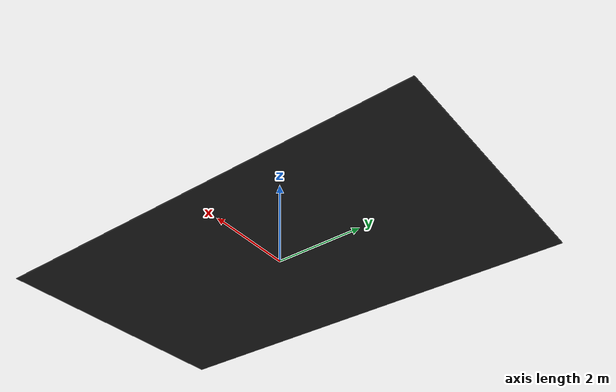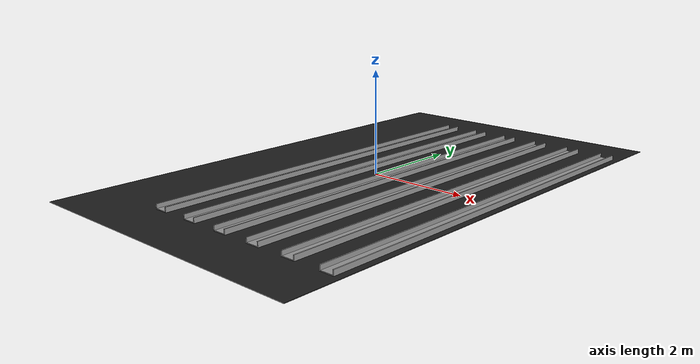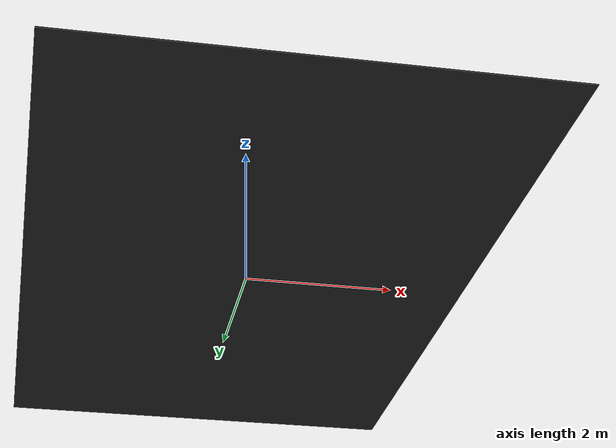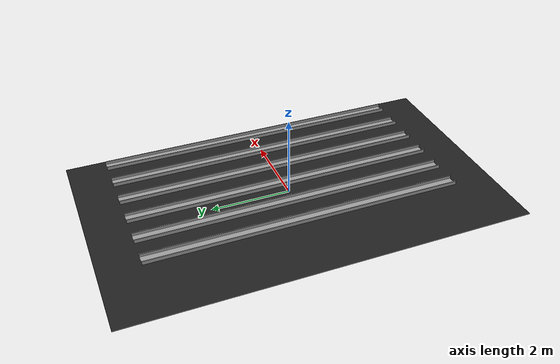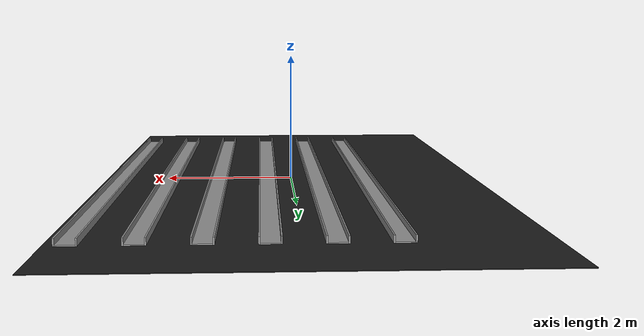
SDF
<?xml version='1.0'?>
<sdf version='1.6'>
  <model name='BaseBricks'>
    <link name='link_0'>
      <pose frame=''>0 0 0 0 -0 0</pose>
      <inertial>
        <mass>1</mass>
        <inertia>
          <ixx>0.166667</ixx>
          <ixy>0</ixy>
          <ixz>0</ixz>
          <iyy>0.166667</iyy>
          <iyz>0</iyz>
          <izz>0.166667</izz>
        </inertia>
        <pose frame=''>0 0 0 0 -0 0</pose>
      </inertial>
      <gravity>1</gravity>
      <self_collide>0</self_collide>
      <kinematic>0</kinematic>
      <visual name='visual'>
        <pose frame=''>0 0 0 0 -0 0</pose>
        <geometry>
          <box>
            <size>6 10 0.01</size>
          </box>
        </geometry>
        <material>
          <lighting>1</lighting>
          <script>
            <uri>file://media/materials/scripts/gazebo.material</uri>
            <name>Gazebo/Black</name>
          </script>
          <ambient>0.1 0.1 0.1 1</ambient>
          <diffuse>0.7 0.7 0.7 1</diffuse>
          <specular>0.01 0.01 0.01 1</specular>
          <emissive>0 0 0 1</emissive>
          <shader type='vertex'>
            <normal_map>__default__</normal_map>
          </shader>
        </material>
        <cast_shadows>1</cast_shadows>
        <transparency>0</transparency>
      </visual>
      <visual name='ModelPreview_0::link_0::visual_1'>
        <pose frame=''>-0.39 0 0.01 0 -0 0</pose>
        <geometry>
          <box>
            <size>0.24 8 0.02</size>
          </box>
        </geometry>
        <material>
          <lighting>1</lighting>
          <script>
            <uri>file://media/materials/scripts/gazebo.material</uri>
            <name>Gazebo/Grey</name>
          </script>
          <ambient>0.8 0.8 0.8 1</ambient>
          <diffuse>0.7 0.7 0.7 1</diffuse>
          <specular>0.01 0.01 0.01 1</specular>
          <emissive>0 0 0 1</emissive>
          <shader type='vertex'>
            <normal_map>__default__</normal_map>
          </shader>
        </material>
        <cast_shadows>1</cast_shadows>
        <transparency>0</transparency>
      </visual>
      <visual name='ModelPreview_0::link_0::visual_2'>
        <pose frame=''>-0.52 0 0.05 0 -0 0</pose>
        <geometry>
          <box>
            <size>0.02 8 0.1</size>
          </box>
        </geometry>
        <material>
          <lighting>1</lighting>
          <script>
            <uri>file://media/materials/scripts/gazebo.material</uri>
            <name>Gazebo/Grey</name>
          </script>
          <ambient>0.8 0.8 0.8 1</ambient>
          <diffuse>0.7 0.7 0.7 1</diffuse>
          <specular>0.01 0.01 0.01 1</specular>
          <emissive>0 0 0 1</emissive>
          <shader type='vertex'>
            <normal_map>__default__</normal_map>
          </shader>
        </material>
        <cast_shadows>1</cast_shadows>
        <transparency>0</transparency>
      </visual>
      <visual name='ModelPreview_0::link_0::visual_3'>
        <pose frame=''>-0.26 0 0.05 0 -0 0</pose>
        <geometry>
          <box>
            <size>0.02 8 0.1</size>
          </box>
        </geometry>
        <material>
          <lighting>1</lighting>
          <script>
            <uri>file://media/materials/scripts/gazebo.material</uri>
            <name>Gazebo/Grey</name>
          </script>
          <ambient>0.8 0.8 0.8 1</ambient>
          <diffuse>0.7 0.7 0.7 1</diffuse>
          <specular>0.01 0.01 0.01 1</specular>
          <emissive>0 0 0 1</emissive>
          <shader type='vertex'>
            <normal_map>__default__</normal_map>
          </shader>
        </material>
        <cast_shadows>1</cast_shadows>
        <transparency>0</transparency>
      </visual>
      <collision name='collision_1'>
        <laser_retro>0</laser_retro>
        <max_contacts>10</max_contacts>
        <pose frame=''>-0.39 0 0 0 -0 0</pose>
        <geometry>
          <box>
            <size>0.24 8 0.02</size>
          </box>
        </geometry>
        <surface>
          <friction>
            <ode>
              <mu>1</mu>
              <mu2>1</mu2>
              <fdir1>0 0 0</fdir1>
              <slip1>0</slip1>
              <slip2>0</slip2>
            </ode>
            <torsional>
              <coefficient>1</coefficient>
              <patch_radius>0</patch_radius>
              <surface_radius>0</surface_radius>
              <use_patch_radius>1</use_patch_radius>
              <ode>
                <slip>0</slip>
              </ode>
            </torsional>
          </friction>
          <bounce>
            <restitution_coefficient>0</restitution_coefficient>
            <threshold>1e+06</threshold>
          </bounce>
          <contact>
            <collide_without_contact>0</collide_without_contact>
            <collide_without_contact_bitmask>1</collide_without_contact_bitmask>
            <collide_bitmask>1</collide_bitmask>
            <ode>
              <soft_cfm>0</soft_cfm>
              <soft_erp>0.2</soft_erp>
              <kp>1e+13</kp>
              <kd>1</kd>
              <max_vel>0.01</max_vel>
              <min_depth>0</min_depth>
            </ode>
            <bullet>
              <split_impulse>1</split_impulse>
              <split_impulse_penetration_threshold>-0.01</split_impulse_penetration_threshold>
              <soft_cfm>0</soft_cfm>
              <soft_erp>0.2</soft_erp>
              <kp>1e+13</kp>
              <kd>1</kd>
            </bullet>
          </contact>
        </surface>
      </collision>
      <collision name='collision_2'>
        <laser_retro>0</laser_retro>
        <max_contacts>10</max_contacts>
        <pose frame=''>-0.52 0 0.05 0 -0 0</pose>
        <geometry>
          <box>
            <size>0.02 8 0.1</size>
          </box>
        </geometry>
        <surface>
          <friction>
            <ode>
              <mu>1</mu>
              <mu2>1</mu2>
              <fdir1>0 0 0</fdir1>
              <slip1>0</slip1>
              <slip2>0</slip2>
            </ode>
            <torsional>
              <coefficient>1</coefficient>
              <patch_radius>0</patch_radius>
              <surface_radius>0</surface_radius>
              <use_patch_radius>1</use_patch_radius>
              <ode>
                <slip>0</slip>
              </ode>
            </torsional>
          </friction>
          <bounce>
            <restitution_coefficient>0</restitution_coefficient>
            <threshold>1e+06</threshold>
          </bounce>
          <contact>
            <collide_without_contact>0</collide_without_contact>
            <collide_without_contact_bitmask>1</collide_without_contact_bitmask>
            <collide_bitmask>1</collide_bitmask>
            <ode>
              <soft_cfm>0</soft_cfm>
              <soft_erp>0.2</soft_erp>
              <kp>1e+13</kp>
              <kd>1</kd>
              <max_vel>0.01</max_vel>
              <min_depth>0</min_depth>
            </ode>
            <bullet>
              <split_impulse>1</split_impulse>
              <split_impulse_penetration_threshold>-0.01</split_impulse_penetration_threshold>
              <soft_cfm>0</soft_cfm>
              <soft_erp>0.2</soft_erp>
              <kp>1e+13</kp>
              <kd>1</kd>
            </bullet>
          </contact>
        </surface>
      </collision>
      <collision name='collision_3'>
        <laser_retro>0</laser_retro>
        <max_contacts>10</max_contacts>
        <pose frame=''>-0.26 0 0.05 0 -0 0</pose>
        <geometry>
          <box>
            <size>0.02 8 0.1</size>
          </box>
        </geometry>
        <surface>
          <friction>
            <ode>
              <mu>1</mu>
              <mu2>1</mu2>
              <fdir1>0 0 0</fdir1>
              <slip1>0</slip1>
              <slip2>0</slip2>
            </ode>
            <torsional>
              <coefficient>1</coefficient>
              <patch_radius>0</patch_radius>
              <surface_radius>0</surface_radius>
              <use_patch_radius>1</use_patch_radius>
              <ode>
                <slip>0</slip>
              </ode>
            </torsional>
          </friction>
          <bounce>
            <restitution_coefficient>0</restitution_coefficient>
            <threshold>1e+06</threshold>
          </bounce>
          <contact>
            <collide_without_contact>0</collide_without_contact>
            <collide_without_contact_bitmask>1</collide_without_contact_bitmask>
            <collide_bitmask>1</collide_bitmask>
            <ode>
              <soft_cfm>0</soft_cfm>
              <soft_erp>0.2</soft_erp>
              <kp>1e+13</kp>
              <kd>1</kd>
              <max_vel>0.01</max_vel>
              <min_depth>0</min_depth>
            </ode>
            <bullet>
              <split_impulse>1</split_impulse>
              <split_impulse_penetration_threshold>-0.01</split_impulse_penetration_threshold>
              <soft_cfm>0</soft_cfm>
              <soft_erp>0.2</soft_erp>
              <kp>1e+13</kp>
              <kd>1</kd>
            </bullet>
          </contact>
        </surface>
      </collision>
<!-- RAIL 2 -->
      <visual name='ModelPreview_0::link_0::visual_4'>
        <pose frame=''>0.39 0 0.01 0 -0 0</pose>
        <geometry>
          <box>
            <size>0.24 8 0.02</size>
          </box>
        </geometry>
        <material>
          <lighting>1</lighting>
          <script>
            <uri>file://media/materials/scripts/gazebo.material</uri>
            <name>Gazebo/Grey</name>
          </script>
          <ambient>0.8 0.8 0.8 1</ambient>
          <diffuse>0.7 0.7 0.7 1</diffuse>
          <specular>0.01 0.01 0.01 1</specular>
          <emissive>0 0 0 1</emissive>
          <shader type='vertex'>
            <normal_map>__default__</normal_map>
          </shader>
        </material>
        <cast_shadows>1</cast_shadows>
        <transparency>0</transparency>
      </visual>
      <visual name='ModelPreview_0::link_0::visual_5'>
        <pose frame=''>0.52 0 0.05 0 -0 0</pose>
        <geometry>
          <box>
            <size>0.02 8 0.1</size>
          </box>
        </geometry>
        <material>
          <lighting>1</lighting>
          <script>
            <uri>file://media/materials/scripts/gazebo.material</uri>
            <name>Gazebo/Grey</name>
          </script>
          <ambient>0.8 0.8 0.8 1</ambient>
          <diffuse>0.7 0.7 0.7 1</diffuse>
          <specular>0.01 0.01 0.01 1</specular>
          <emissive>0 0 0 1</emissive>
          <shader type='vertex'>
            <normal_map>__default__</normal_map>
          </shader>
        </material>
        <cast_shadows>1</cast_shadows>
        <transparency>0</transparency>
      </visual>
      <visual name='ModelPreview_0::link_0::visual_6'>
        <pose frame=''>0.26 0 0.05 0 -0 0</pose>
        <geometry>
          <box>
            <size>0.02 8 0.1</size>
          </box>
        </geometry>
        <material>
          <lighting>1</lighting>
          <script>
            <uri>file://media/materials/scripts/gazebo.material</uri>
            <name>Gazebo/Grey</name>
          </script>
          <ambient>0.8 0.8 0.8 1</ambient>
          <diffuse>0.7 0.7 0.7 1</diffuse>
          <specular>0.01 0.01 0.01 1</specular>
          <emissive>0 0 0 1</emissive>
          <shader type='vertex'>
            <normal_map>__default__</normal_map>
          </shader>
        </material>
        <cast_shadows>1</cast_shadows>
        <transparency>0</transparency>
      </visual>
      <collision name='collision_4'>
        <laser_retro>0</laser_retro>
        <max_contacts>10</max_contacts>
        <pose frame=''>0.39 0 0 0 -0 0</pose>
        <geometry>
          <box>
            <size>0.24 8 0.02</size>
          </box>
        </geometry>
        <surface>
          <friction>
            <ode>
              <mu>1</mu>
              <mu2>1</mu2>
              <fdir1>0 0 0</fdir1>
              <slip1>0</slip1>
              <slip2>0</slip2>
            </ode>
            <torsional>
              <coefficient>1</coefficient>
              <patch_radius>0</patch_radius>
              <surface_radius>0</surface_radius>
              <use_patch_radius>1</use_patch_radius>
              <ode>
                <slip>0</slip>
              </ode>
            </torsional>
          </friction>
          <bounce>
            <restitution_coefficient>0</restitution_coefficient>
            <threshold>1e+06</threshold>
          </bounce>
          <contact>
            <collide_without_contact>0</collide_without_contact>
            <collide_without_contact_bitmask>1</collide_without_contact_bitmask>
            <collide_bitmask>1</collide_bitmask>
            <ode>
              <soft_cfm>0</soft_cfm>
              <soft_erp>0.2</soft_erp>
              <kp>1e+13</kp>
              <kd>1</kd>
              <max_vel>0.01</max_vel>
              <min_depth>0</min_depth>
            </ode>
            <bullet>
              <split_impulse>1</split_impulse>
              <split_impulse_penetration_threshold>-0.01</split_impulse_penetration_threshold>
              <soft_cfm>0</soft_cfm>
              <soft_erp>0.2</soft_erp>
              <kp>1e+13</kp>
              <kd>1</kd>
            </bullet>
          </contact>
        </surface>
      </collision>
      <collision name='collision_5'>
        <laser_retro>0</laser_retro>
        <max_contacts>10</max_contacts>
        <pose frame=''>0.52 0 0.05 0 -0 0</pose>
        <geometry>
          <box>
            <size>0.02 8 0.1</size>
          </box>
        </geometry>
        <surface>
          <friction>
            <ode>
              <mu>1</mu>
              <mu2>1</mu2>
              <fdir1>0 0 0</fdir1>
              <slip1>0</slip1>
              <slip2>0</slip2>
            </ode>
            <torsional>
              <coefficient>1</coefficient>
              <patch_radius>0</patch_radius>
              <surface_radius>0</surface_radius>
              <use_patch_radius>1</use_patch_radius>
              <ode>
                <slip>0</slip>
              </ode>
            </torsional>
          </friction>
          <bounce>
            <restitution_coefficient>0</restitution_coefficient>
            <threshold>1e+06</threshold>
          </bounce>
          <contact>
            <collide_without_contact>0</collide_without_contact>
            <collide_without_contact_bitmask>1</collide_without_contact_bitmask>
            <collide_bitmask>1</collide_bitmask>
            <ode>
              <soft_cfm>0</soft_cfm>
              <soft_erp>0.2</soft_erp>
              <kp>1e+13</kp>
              <kd>1</kd>
              <max_vel>0.01</max_vel>
              <min_depth>0</min_depth>
            </ode>
            <bullet>
              <split_impulse>1</split_impulse>
              <split_impulse_penetration_threshold>-0.01</split_impulse_penetration_threshold>
              <soft_cfm>0</soft_cfm>
              <soft_erp>0.2</soft_erp>
              <kp>1e+13</kp>
              <kd>1</kd>
            </bullet>
          </contact>
        </surface>
      </collision>
      <collision name='collision_6'>
        <laser_retro>0</laser_retro>
        <max_contacts>10</max_contacts>
        <pose frame=''>0.26 0 0.05 0 -0 0</pose>
        <geometry>
          <box>
            <size>0.02 8 0.1</size>
          </box>
        </geometry>
        <surface>
          <friction>
            <ode>
              <mu>1</mu>
              <mu2>1</mu2>
              <fdir1>0 0 0</fdir1>
              <slip1>0</slip1>
              <slip2>0</slip2>
            </ode>
            <torsional>
              <coefficient>1</coefficient>
              <patch_radius>0</patch_radius>
              <surface_radius>0</surface_radius>
              <use_patch_radius>1</use_patch_radius>
              <ode>
                <slip>0</slip>
              </ode>
            </torsional>
          </friction>
          <bounce>
            <restitution_coefficient>0</restitution_coefficient>
            <threshold>1e+06</threshold>
          </bounce>
          <contact>
            <collide_without_contact>0</collide_without_contact>
            <collide_without_contact_bitmask>1</collide_without_contact_bitmask>
            <collide_bitmask>1</collide_bitmask>
            <ode>
              <soft_cfm>0</soft_cfm>
              <soft_erp>0.2</soft_erp>
              <kp>1e+13</kp>
              <kd>1</kd>
              <max_vel>0.01</max_vel>
              <min_depth>0</min_depth>
            </ode>
            <bullet>
              <split_impulse>1</split_impulse>
              <split_impulse_penetration_threshold>-0.01</split_impulse_penetration_threshold>
              <soft_cfm>0</soft_cfm>
              <soft_erp>0.2</soft_erp>
              <kp>1e+13</kp>
              <kd>1</kd>
            </bullet>
          </contact>
        </surface>
      </collision>

      <!-- RAIL 3 -->
      <visual name='ModelPreview_0::link_0::visual_7'>
        <pose frame=''>1.17 0 0.01 0 -0 0</pose>
        <geometry>
          <box>
            <size>0.24 8 0.02</size>
          </box>
        </geometry>
        <material>
          <lighting>1</lighting>
          <script>
            <uri>file://media/materials/scripts/gazebo.material</uri>
            <name>Gazebo/Grey</name>
          </script>
          <ambient>0.8 0.8 0.8 1</ambient>
          <diffuse>0.7 0.7 0.7 1</diffuse>
          <specular>0.01 0.01 0.01 1</specular>
          <emissive>0 0 0 1</emissive>
          <shader type='vertex'>
            <normal_map>__default__</normal_map>
          </shader>
        </material>
        <cast_shadows>1</cast_shadows>
        <transparency>0</transparency>
      </visual>
      <visual name='ModelPreview_0::link_0::visual_8'>
        <pose frame=''>1.3 0 0.05 0 -0 0</pose>
        <geometry>
          <box>
            <size>0.02 8 0.1</size>
          </box>
        </geometry>
        <material>
          <lighting>1</lighting>
          <script>
            <uri>file://media/materials/scripts/gazebo.material</uri>
            <name>Gazebo/Grey</name>
          </script>
          <ambient>0.8 0.8 0.8 1</ambient>
          <diffuse>0.7 0.7 0.7 1</diffuse>
          <specular>0.01 0.01 0.01 1</specular>
          <emissive>0 0 0 1</emissive>
          <shader type='vertex'>
            <normal_map>__default__</normal_map>
          </shader>
        </material>
        <cast_shadows>1</cast_shadows>
        <transparency>0</transparency>
      </visual>
      <visual name='ModelPreview_0::link_0::visual_9'>
        <pose frame=''>1.04 0 0.05 0 -0 0</pose>
        <geometry>
          <box>
            <size>0.02 8 0.1</size>
          </box>
        </geometry>
        <material>
          <lighting>1</lighting>
          <script>
            <uri>file://media/materials/scripts/gazebo.material</uri>
            <name>Gazebo/Grey</name>
          </script>
          <ambient>0.8 0.8 0.8 1</ambient>
          <diffuse>0.7 0.7 0.7 1</diffuse>
          <specular>0.01 0.01 0.01 1</specular>
          <emissive>0 0 0 1</emissive>
          <shader type='vertex'>
            <normal_map>__default__</normal_map>
          </shader>
        </material>
        <cast_shadows>1</cast_shadows>
        <transparency>0</transparency>
      </visual>
      <collision name='collision_7'>
        <laser_retro>0</laser_retro>
        <max_contacts>10</max_contacts>
        <pose frame=''>1.17 0 0 0 -0 0</pose>
        <geometry>
          <box>
            <size>0.24 8 0.02</size>
          </box>
        </geometry>
        <surface>
          <friction>
            <ode>
              <mu>1</mu>
              <mu2>1</mu2>
              <fdir1>0 0 0</fdir1>
              <slip1>0</slip1>
              <slip2>0</slip2>
            </ode>
            <torsional>
              <coefficient>1</coefficient>
              <patch_radius>0</patch_radius>
              <surface_radius>0</surface_radius>
              <use_patch_radius>1</use_patch_radius>
              <ode>
                <slip>0</slip>
              </ode>
            </torsional>
          </friction>
          <bounce>
            <restitution_coefficient>0</restitution_coefficient>
            <threshold>1e+06</threshold>
          </bounce>
          <contact>
            <collide_without_contact>0</collide_without_contact>
            <collide_without_contact_bitmask>1</collide_without_contact_bitmask>
            <collide_bitmask>1</collide_bitmask>
            <ode>
              <soft_cfm>0</soft_cfm>
              <soft_erp>0.2</soft_erp>
              <kp>1e+13</kp>
              <kd>1</kd>
              <max_vel>0.01</max_vel>
              <min_depth>0</min_depth>
            </ode>
            <bullet>
              <split_impulse>1</split_impulse>
              <split_impulse_penetration_threshold>-0.01</split_impulse_penetration_threshold>
              <soft_cfm>0</soft_cfm>
              <soft_erp>0.2</soft_erp>
              <kp>1e+13</kp>
              <kd>1</kd>
            </bullet>
          </contact>
        </surface>
      </collision>
      <collision name='collision_8'>
        <laser_retro>0</laser_retro>
        <max_contacts>10</max_contacts>
        <pose frame=''>1.3 0 0.05 0 -0 0</pose>
        <geometry>
          <box>
            <size>0.02 8 0.1</size>
          </box>
        </geometry>
        <surface>
          <friction>
            <ode>
              <mu>1</mu>
              <mu2>1</mu2>
              <fdir1>0 0 0</fdir1>
              <slip1>0</slip1>
              <slip2>0</slip2>
            </ode>
            <torsional>
              <coefficient>1</coefficient>
              <patch_radius>0</patch_radius>
              <surface_radius>0</surface_radius>
              <use_patch_radius>1</use_patch_radius>
              <ode>
                <slip>0</slip>
              </ode>
            </torsional>
          </friction>
          <bounce>
            <restitution_coefficient>0</restitution_coefficient>
            <threshold>1e+06</threshold>
          </bounce>
          <contact>
            <collide_without_contact>0</collide_without_contact>
            <collide_without_contact_bitmask>1</collide_without_contact_bitmask>
            <collide_bitmask>1</collide_bitmask>
            <ode>
              <soft_cfm>0</soft_cfm>
              <soft_erp>0.2</soft_erp>
              <kp>1e+13</kp>
              <kd>1</kd>
              <max_vel>0.01</max_vel>
              <min_depth>0</min_depth>
            </ode>
            <bullet>
              <split_impulse>1</split_impulse>
              <split_impulse_penetration_threshold>-0.01</split_impulse_penetration_threshold>
              <soft_cfm>0</soft_cfm>
              <soft_erp>0.2</soft_erp>
              <kp>1e+13</kp>
              <kd>1</kd>
            </bullet>
          </contact>
        </surface>
      </collision>
      <collision name='collision_9'>
        <laser_retro>0</laser_retro>
        <max_contacts>10</max_contacts>
        <pose frame=''>1.04 0 0.05 0 -0 0</pose>
        <geometry>
          <box>
            <size>0.02 8 0.1</size>
          </box>
        </geometry>
        <surface>
          <friction>
            <ode>
              <mu>1</mu>
              <mu2>1</mu2>
              <fdir1>0 0 0</fdir1>
              <slip1>0</slip1>
              <slip2>0</slip2>
            </ode>
            <torsional>
              <coefficient>1</coefficient>
              <patch_radius>0</patch_radius>
              <surface_radius>0</surface_radius>
              <use_patch_radius>1</use_patch_radius>
              <ode>
                <slip>0</slip>
              </ode>
            </torsional>
          </friction>
          <bounce>
            <restitution_coefficient>0</restitution_coefficient>
            <threshold>1e+06</threshold>
          </bounce>
          <contact>
            <collide_without_contact>0</collide_without_contact>
            <collide_without_contact_bitmask>1</collide_without_contact_bitmask>
            <collide_bitmask>1</collide_bitmask>
            <ode>
              <soft_cfm>0</soft_cfm>
              <soft_erp>0.2</soft_erp>
              <kp>1e+13</kp>
              <kd>1</kd>
              <max_vel>0.01</max_vel>
              <min_depth>0</min_depth>
            </ode>
            <bullet>
              <split_impulse>1</split_impulse>
              <split_impulse_penetration_threshold>-0.01</split_impulse_penetration_threshold>
              <soft_cfm>0</soft_cfm>
              <soft_erp>0.2</soft_erp>
              <kp>1e+13</kp>
              <kd>1</kd>
            </bullet>
          </contact>
        </surface>
      </collision>

      <!-- RAIL 4 -->
      <visual name='ModelPreview_0::link_0::visual_10'>
        <pose frame=''>-1.17 0 0.01 0 -0 0</pose>
        <geometry>
          <box>
            <size>0.24 8 0.02</size>
          </box>
        </geometry>
        <material>
          <lighting>1</lighting>
          <script>
            <uri>file://media/materials/scripts/gazebo.material</uri>
            <name>Gazebo/Grey</name>
          </script>
          <ambient>0.8 0.8 0.8 1</ambient>
          <diffuse>0.7 0.7 0.7 1</diffuse>
          <specular>0.01 0.01 0.01 1</specular>
          <emissive>0 0 0 1</emissive>
          <shader type='vertex'>
            <normal_map>__default__</normal_map>
          </shader>
        </material>
        <cast_shadows>1</cast_shadows>
        <transparency>0</transparency>
      </visual>
      <visual name='ModelPreview_0::link_0::visual_11'>
        <pose frame=''>-1.3 0 0.05 0 -0 0</pose>
        <geometry>
          <box>
            <size>0.02 8 0.1</size>
          </box>
        </geometry>
        <material>
          <lighting>1</lighting>
          <script>
            <uri>file://media/materials/scripts/gazebo.material</uri>
            <name>Gazebo/Grey</name>
          </script>
          <ambient>0.8 0.8 0.8 1</ambient>
          <diffuse>0.7 0.7 0.7 1</diffuse>
          <specular>0.01 0.01 0.01 1</specular>
          <emissive>0 0 0 1</emissive>
          <shader type='vertex'>
            <normal_map>__default__</normal_map>
          </shader>
        </material>
        <cast_shadows>1</cast_shadows>
        <transparency>0</transparency>
      </visual>
      <visual name='ModelPreview_0::link_0::visual_12'>
        <pose frame=''>-1.04 0 0.05 0 -0 0</pose>
        <geometry>
          <box>
            <size>0.02 8 0.1</size>
          </box>
        </geometry>
        <material>
          <lighting>1</lighting>
          <script>
            <uri>file://media/materials/scripts/gazebo.material</uri>
            <name>Gazebo/Grey</name>
          </script>
          <ambient>0.8 0.8 0.8 1</ambient>
          <diffuse>0.7 0.7 0.7 1</diffuse>
          <specular>0.01 0.01 0.01 1</specular>
          <emissive>0 0 0 1</emissive>
          <shader type='vertex'>
            <normal_map>__default__</normal_map>
          </shader>
        </material>
        <cast_shadows>1</cast_shadows>
        <transparency>0</transparency>
      </visual>
      <collision name='collision_10'>
        <laser_retro>0</laser_retro>
        <max_contacts>10</max_contacts>
        <pose frame=''>-1.17 0 0 0 -0 0</pose>
        <geometry>
          <box>
            <size>0.24 8 0.02</size>
          </box>
        </geometry>
        <surface>
          <friction>
            <ode>
              <mu>1</mu>
              <mu2>1</mu2>
              <fdir1>0 0 0</fdir1>
              <slip1>0</slip1>
              <slip2>0</slip2>
            </ode>
            <torsional>
              <coefficient>1</coefficient>
              <patch_radius>0</patch_radius>
              <surface_radius>0</surface_radius>
              <use_patch_radius>1</use_patch_radius>
              <ode>
                <slip>0</slip>
              </ode>
            </torsional>
          </friction>
          <bounce>
            <restitution_coefficient>0</restitution_coefficient>
            <threshold>1e+06</threshold>
          </bounce>
          <contact>
            <collide_without_contact>0</collide_without_contact>
            <collide_without_contact_bitmask>1</collide_without_contact_bitmask>
            <collide_bitmask>1</collide_bitmask>
            <ode>
              <soft_cfm>0</soft_cfm>
              <soft_erp>0.2</soft_erp>
              <kp>1e+13</kp>
              <kd>1</kd>
              <max_vel>0.01</max_vel>
              <min_depth>0</min_depth>
            </ode>
            <bullet>
              <split_impulse>1</split_impulse>
              <split_impulse_penetration_threshold>-0.01</split_impulse_penetration_threshold>
              <soft_cfm>0</soft_cfm>
              <soft_erp>0.2</soft_erp>
              <kp>1e+13</kp>
              <kd>1</kd>
            </bullet>
          </contact>
        </surface>
      </collision>
      <collision name='collision_11'>
        <laser_retro>0</laser_retro>
        <max_contacts>10</max_contacts>
        <pose frame=''>-1.3 0 0.05 0 -0 0</pose>
        <geometry>
          <box>
            <size>0.02 8 0.1</size>
          </box>
        </geometry>
        <surface>
          <friction>
            <ode>
              <mu>1</mu>
              <mu2>1</mu2>
              <fdir1>0 0 0</fdir1>
              <slip1>0</slip1>
              <slip2>0</slip2>
            </ode>
            <torsional>
              <coefficient>1</coefficient>
              <patch_radius>0</patch_radius>
              <surface_radius>0</surface_radius>
              <use_patch_radius>1</use_patch_radius>
              <ode>
                <slip>0</slip>
              </ode>
            </torsional>
          </friction>
          <bounce>
            <restitution_coefficient>0</restitution_coefficient>
            <threshold>1e+06</threshold>
          </bounce>
          <contact>
            <collide_without_contact>0</collide_without_contact>
            <collide_without_contact_bitmask>1</collide_without_contact_bitmask>
            <collide_bitmask>1</collide_bitmask>
            <ode>
              <soft_cfm>0</soft_cfm>
              <soft_erp>0.2</soft_erp>
              <kp>1e+13</kp>
              <kd>1</kd>
              <max_vel>0.01</max_vel>
              <min_depth>0</min_depth>
            </ode>
            <bullet>
              <split_impulse>1</split_impulse>
              <split_impulse_penetration_threshold>-0.01</split_impulse_penetration_threshold>
              <soft_cfm>0</soft_cfm>
              <soft_erp>0.2</soft_erp>
              <kp>1e+13</kp>
              <kd>1</kd>
            </bullet>
          </contact>
        </surface>
      </collision>
      <collision name='collision_12'>
        <laser_retro>0</laser_retro>
        <max_contacts>10</max_contacts>
        <pose frame=''>-1.04 0 0.05 0 -0 0</pose>
        <geometry>
          <box>
            <size>0.02 8 0.1</size>
          </box>
        </geometry>
        <surface>
          <friction>
            <ode>
              <mu>1</mu>
              <mu2>1</mu2>
              <fdir1>0 0 0</fdir1>
              <slip1>0</slip1>
              <slip2>0</slip2>
            </ode>
            <torsional>
              <coefficient>1</coefficient>
              <patch_radius>0</patch_radius>
              <surface_radius>0</surface_radius>
              <use_patch_radius>1</use_patch_radius>
              <ode>
                <slip>0</slip>
              </ode>
            </torsional>
          </friction>
          <bounce>
            <restitution_coefficient>0</restitution_coefficient>
            <threshold>1e+06</threshold>
          </bounce>
          <contact>
            <collide_without_contact>0</collide_without_contact>
            <collide_without_contact_bitmask>1</collide_without_contact_bitmask>
            <collide_bitmask>1</collide_bitmask>
            <ode>
              <soft_cfm>0</soft_cfm>
              <soft_erp>0.2</soft_erp>
              <kp>1e+13</kp>
              <kd>1</kd>
              <max_vel>0.01</max_vel>
              <min_depth>0</min_depth>
            </ode>
            <bullet>
              <split_impulse>1</split_impulse>
              <split_impulse_penetration_threshold>-0.01</split_impulse_penetration_threshold>
              <soft_cfm>0</soft_cfm>
              <soft_erp>0.2</soft_erp>
              <kp>1e+13</kp>
              <kd>1</kd>
            </bullet>
          </contact>
        </surface>
      </collision>

      <!-- RAIL 5 -->
      <visual name='ModelPreview_0::link_0::visual_51'>
        <pose frame=''>1.95 0 0.01 0 -0 0</pose>
        <geometry>
          <box>
            <size>0.24 8 0.02</size>
          </box>
        </geometry>
        <material>
          <lighting>1</lighting>
          <script>
            <uri>file://media/materials/scripts/gazebo.material</uri>
            <name>Gazebo/Grey</name>
          </script>
          <ambient>0.8 0.8 0.8 1</ambient>
          <diffuse>0.7 0.7 0.7 1</diffuse>
          <specular>0.01 0.01 0.01 1</specular>
          <emissive>0 0 0 1</emissive>
          <shader type='vertex'>
            <normal_map>__default__</normal_map>
          </shader>
        </material>
        <cast_shadows>1</cast_shadows>
        <transparency>0</transparency>
      </visual>
      <visual name='ModelPreview_0::link_0::visual_52'>
        <pose frame=''>2.08 0 0.05 0 -0 0</pose>
        <geometry>
          <box>
            <size>0.02 8 0.1</size>
          </box>
        </geometry>
        <material>
          <lighting>1</lighting>
          <script>
            <uri>file://media/materials/scripts/gazebo.material</uri>
            <name>Gazebo/Grey</name>
          </script>
          <ambient>0.8 0.8 0.8 1</ambient>
          <diffuse>0.7 0.7 0.7 1</diffuse>
          <specular>0.01 0.01 0.01 1</specular>
          <emissive>0 0 0 1</emissive>
          <shader type='vertex'>
            <normal_map>__default__</normal_map>
          </shader>
        </material>
        <cast_shadows>1</cast_shadows>
        <transparency>0</transparency>
      </visual>
      <visual name='ModelPreview_0::link_0::visual_53'>
        <pose frame=''>1.82 0 0.05 0 -0 0</pose>
        <geometry>
          <box>
            <size>0.02 8 0.1</size>
          </box>
        </geometry>
        <material>
          <lighting>1</lighting>
          <script>
            <uri>file://media/materials/scripts/gazebo.material</uri>
            <name>Gazebo/Grey</name>
          </script>
          <ambient>0.8 0.8 0.8 1</ambient>
          <diffuse>0.7 0.7 0.7 1</diffuse>
          <specular>0.01 0.01 0.01 1</specular>
          <emissive>0 0 0 1</emissive>
          <shader type='vertex'>
            <normal_map>__default__</normal_map>
          </shader>
        </material>
        <cast_shadows>1</cast_shadows>
        <transparency>0</transparency>
      </visual>
      <collision name='collision_51'>
        <laser_retro>0</laser_retro>
        <max_contacts>10</max_contacts>
        <pose frame=''>1.95 0 0 0 -0 0</pose>
        <geometry>
          <box>
            <size>0.24 8 0.02</size>
          </box>
        </geometry>
        <surface>
          <friction>
            <ode>
              <mu>1</mu>
              <mu2>1</mu2>
              <fdir1>0 0 0</fdir1>
              <slip1>0</slip1>
              <slip2>0</slip2>
            </ode>
            <torsional>
              <coefficient>1</coefficient>
              <patch_radius>0</patch_radius>
              <surface_radius>0</surface_radius>
              <use_patch_radius>1</use_patch_radius>
              <ode>
                <slip>0</slip>
              </ode>
            </torsional>
          </friction>
          <bounce>
            <restitution_coefficient>0</restitution_coefficient>
            <threshold>1e+06</threshold>
          </bounce>
          <contact>
            <collide_without_contact>0</collide_without_contact>
            <collide_without_contact_bitmask>1</collide_without_contact_bitmask>
            <collide_bitmask>1</collide_bitmask>
            <ode>
              <soft_cfm>0</soft_cfm>
              <soft_erp>0.2</soft_erp>
              <kp>1e+13</kp>
              <kd>1</kd>
              <max_vel>0.01</max_vel>
              <min_depth>0</min_depth>
            </ode>
            <bullet>
              <split_impulse>1</split_impulse>
              <split_impulse_penetration_threshold>-0.01</split_impulse_penetration_threshold>
              <soft_cfm>0</soft_cfm>
              <soft_erp>0.2</soft_erp>
              <kp>1e+13</kp>
              <kd>1</kd>
            </bullet>
          </contact>
        </surface>
      </collision>
      <collision name='collision_52'>
        <laser_retro>0</laser_retro>
        <max_contacts>10</max_contacts>
        <pose frame=''>2.08 0 0.05 0 -0 0</pose>
        <geometry>
          <box>
            <size>0.02 8 0.1</size>
          </box>
        </geometry>
        <surface>
          <friction>
            <ode>
              <mu>1</mu>
              <mu2>1</mu2>
              <fdir1>0 0 0</fdir1>
              <slip1>0</slip1>
              <slip2>0</slip2>
            </ode>
            <torsional>
              <coefficient>1</coefficient>
              <patch_radius>0</patch_radius>
              <surface_radius>0</surface_radius>
              <use_patch_radius>1</use_patch_radius>
              <ode>
                <slip>0</slip>
              </ode>
            </torsional>
          </friction>
          <bounce>
            <restitution_coefficient>0</restitution_coefficient>
            <threshold>1e+06</threshold>
          </bounce>
          <contact>
            <collide_without_contact>0</collide_without_contact>
            <collide_without_contact_bitmask>1</collide_without_contact_bitmask>
            <collide_bitmask>1</collide_bitmask>
            <ode>
              <soft_cfm>0</soft_cfm>
              <soft_erp>0.2</soft_erp>
              <kp>1e+13</kp>
              <kd>1</kd>
              <max_vel>0.01</max_vel>
              <min_depth>0</min_depth>
            </ode>
            <bullet>
              <split_impulse>1</split_impulse>
              <split_impulse_penetration_threshold>-0.01</split_impulse_penetration_threshold>
              <soft_cfm>0</soft_cfm>
              <soft_erp>0.2</soft_erp>
              <kp>1e+13</kp>
              <kd>1</kd>
            </bullet>
          </contact>
        </surface>
      </collision>
      <collision name='collision_53'>
        <laser_retro>0</laser_retro>
        <max_contacts>10</max_contacts>
        <pose frame=''>1.82 0 0.05 0 -0 0</pose>
        <geometry>
          <box>
            <size>0.02 8 0.1</size>
          </box>
        </geometry>
        <surface>
          <friction>
            <ode>
              <mu>1</mu>
              <mu2>1</mu2>
              <fdir1>0 0 0</fdir1>
              <slip1>0</slip1>
              <slip2>0</slip2>
            </ode>
            <torsional>
              <coefficient>1</coefficient>
              <patch_radius>0</patch_radius>
              <surface_radius>0</surface_radius>
              <use_patch_radius>1</use_patch_radius>
              <ode>
                <slip>0</slip>
              </ode>
            </torsional>
          </friction>
          <bounce>
            <restitution_coefficient>0</restitution_coefficient>
            <threshold>1e+06</threshold>
          </bounce>
          <contact>
            <collide_without_contact>0</collide_without_contact>
            <collide_without_contact_bitmask>1</collide_without_contact_bitmask>
            <collide_bitmask>1</collide_bitmask>
            <ode>
              <soft_cfm>0</soft_cfm>
              <soft_erp>0.2</soft_erp>
              <kp>1e+13</kp>
              <kd>1</kd>
              <max_vel>0.01</max_vel>
              <min_depth>0</min_depth>
            </ode>
            <bullet>
              <split_impulse>1</split_impulse>
              <split_impulse_penetration_threshold>-0.01</split_impulse_penetration_threshold>
              <soft_cfm>0</soft_cfm>
              <soft_erp>0.2</soft_erp>
              <kp>1e+13</kp>
              <kd>1</kd>
            </bullet>
          </contact>
        </surface>
      </collision>
      <!-- RAIL 6 -->
      <visual name='ModelPreview_0::link_0::visual_61'>
        <pose frame=''>2.73 0 0.01 0 -0 0</pose>
        <geometry>
          <box>
            <size>0.24 8 0.02</size>
          </box>
        </geometry>
        <material>
          <lighting>1</lighting>
          <script>
            <uri>file://media/materials/scripts/gazebo.material</uri>
            <name>Gazebo/Grey</name>
          </script>
          <ambient>0.8 0.8 0.8 1</ambient>
          <diffuse>0.7 0.7 0.7 1</diffuse>
          <specular>0.01 0.01 0.01 1</specular>
          <emissive>0 0 0 1</emissive>
          <shader type='vertex'>
            <normal_map>__default__</normal_map>
          </shader>
        </material>
        <cast_shadows>1</cast_shadows>
        <transparency>0</transparency>
      </visual>
      <visual name='ModelPreview_0::link_0::visual_62'>
        <pose frame=''>2.60 0 0.05 0 -0 0</pose>
        <geometry>
          <box>
            <size>0.02 8 0.1</size>
          </box>
        </geometry>
        <material>
          <lighting>1</lighting>
          <script>
            <uri>file://media/materials/scripts/gazebo.material</uri>
            <name>Gazebo/Grey</name>
          </script>
          <ambient>0.8 0.8 0.8 1</ambient>
          <diffuse>0.7 0.7 0.7 1</diffuse>
          <specular>0.01 0.01 0.01 1</specular>
          <emissive>0 0 0 1</emissive>
          <shader type='vertex'>
            <normal_map>__default__</normal_map>
          </shader>
        </material>
        <cast_shadows>1</cast_shadows>
        <transparency>0</transparency>
      </visual>
      <visual name='ModelPreview_0::link_0::visual_63'>
        <pose frame=''>2.86 0 0.05 0 -0 0</pose>
        <geometry>
          <box>
            <size>0.02 8 0.1</size>
          </box>
        </geometry>
        <material>
          <lighting>1</lighting>
          <script>
            <uri>file://media/materials/scripts/gazebo.material</uri>
            <name>Gazebo/Grey</name>
          </script>
          <ambient>0.8 0.8 0.8 1</ambient>
          <diffuse>0.7 0.7 0.7 1</diffuse>
          <specular>0.01 0.01 0.01 1</specular>
          <emissive>0 0 0 1</emissive>
          <shader type='vertex'>
            <normal_map>__default__</normal_map>
          </shader>
        </material>
        <cast_shadows>1</cast_shadows>
        <transparency>0</transparency>
      </visual>
      <collision name='collision_61'>
        <laser_retro>0</laser_retro>
        <max_contacts>10</max_contacts>
        <pose frame=''>2.73 0 0 0 -0 0</pose>
        <geometry>
          <box>
            <size>0.24 8 0.02</size>
          </box>
        </geometry>
        <surface>
          <friction>
            <ode>
              <mu>1</mu>
              <mu2>1</mu2>
              <fdir1>0 0 0</fdir1>
              <slip1>0</slip1>
              <slip2>0</slip2>
            </ode>
            <torsional>
              <coefficient>1</coefficient>
              <patch_radius>0</patch_radius>
              <surface_radius>0</surface_radius>
              <use_patch_radius>1</use_patch_radius>
              <ode>
                <slip>0</slip>
              </ode>
            </torsional>
          </friction>
          <bounce>
            <restitution_coefficient>0</restitution_coefficient>
            <threshold>1e+06</threshold>
          </bounce>
          <contact>
            <collide_without_contact>0</collide_without_contact>
            <collide_without_contact_bitmask>1</collide_without_contact_bitmask>
            <collide_bitmask>1</collide_bitmask>
            <ode>
              <soft_cfm>0</soft_cfm>
              <soft_erp>0.2</soft_erp>
              <kp>1e+13</kp>
              <kd>1</kd>
              <max_vel>0.01</max_vel>
              <min_depth>0</min_depth>
            </ode>
            <bullet>
              <split_impulse>1</split_impulse>
              <split_impulse_penetration_threshold>-0.01</split_impulse_penetration_threshold>
              <soft_cfm>0</soft_cfm>
              <soft_erp>0.2</soft_erp>
              <kp>1e+13</kp>
              <kd>1</kd>
            </bullet>
          </contact>
        </surface>
      </collision>
      <collision name='collision_62'>
        <laser_retro>0</laser_retro>
        <max_contacts>10</max_contacts>
        <pose frame=''>2.60 0 0.05 0 -0 0</pose>
        <geometry>
          <box>
            <size>0.02 8 0.1</size>
          </box>
        </geometry>
        <surface>
          <friction>
            <ode>
              <mu>1</mu>
              <mu2>1</mu2>
              <fdir1>0 0 0</fdir1>
              <slip1>0</slip1>
              <slip2>0</slip2>
            </ode>
            <torsional>
              <coefficient>1</coefficient>
              <patch_radius>0</patch_radius>
              <surface_radius>0</surface_radius>
              <use_patch_radius>1</use_patch_radius>
              <ode>
                <slip>0</slip>
              </ode>
            </torsional>
          </friction>
          <bounce>
            <restitution_coefficient>0</restitution_coefficient>
            <threshold>1e+06</threshold>
          </bounce>
          <contact>
            <collide_without_contact>0</collide_without_contact>
            <collide_without_contact_bitmask>1</collide_without_contact_bitmask>
            <collide_bitmask>1</collide_bitmask>
            <ode>
              <soft_cfm>0</soft_cfm>
              <soft_erp>0.2</soft_erp>
              <kp>1e+13</kp>
              <kd>1</kd>
              <max_vel>0.01</max_vel>
              <min_depth>0</min_depth>
            </ode>
            <bullet>
              <split_impulse>1</split_impulse>
              <split_impulse_penetration_threshold>-0.01</split_impulse_penetration_threshold>
              <soft_cfm>0</soft_cfm>
              <soft_erp>0.2</soft_erp>
              <kp>1e+13</kp>
              <kd>1</kd>
            </bullet>
          </contact>
        </surface>
      </collision>
      <collision name='collision_63'>
        <laser_retro>0</laser_retro>
        <max_contacts>10</max_contacts>
        <pose frame=''>2.86 0 0.05 0 -0 0</pose>
        <geometry>
          <box>
            <size>0.02 8 0.1</size>
          </box>
        </geometry>
        <surface>
          <friction>
            <ode>
              <mu>1</mu>
              <mu2>1</mu2>
              <fdir1>0 0 0</fdir1>
              <slip1>0</slip1>
              <slip2>0</slip2>
            </ode>
            <torsional>
              <coefficient>1</coefficient>
              <patch_radius>0</patch_radius>
              <surface_radius>0</surface_radius>
              <use_patch_radius>1</use_patch_radius>
              <ode>
                <slip>0</slip>
              </ode>
            </torsional>
          </friction>
          <bounce>
            <restitution_coefficient>0</restitution_coefficient>
            <threshold>1e+06</threshold>
          </bounce>
          <contact>
            <collide_without_contact>0</collide_without_contact>
            <collide_without_contact_bitmask>1</collide_without_contact_bitmask>
            <collide_bitmask>1</collide_bitmask>
            <ode>
              <soft_cfm>0</soft_cfm>
              <soft_erp>0.2</soft_erp>
              <kp>1e+13</kp>
              <kd>1</kd>
              <max_vel>0.01</max_vel>
              <min_depth>0</min_depth>
            </ode>
            <bullet>
              <split_impulse>1</split_impulse>
              <split_impulse_penetration_threshold>-0.01</split_impulse_penetration_threshold>
              <soft_cfm>0</soft_cfm>
              <soft_erp>0.2</soft_erp>
              <kp>1e+13</kp>
              <kd>1</kd>
            </bullet>
          </contact>
        </surface>
      </collision>

    </link>
    <static>1</static>
    <allow_auto_disable>1</allow_auto_disable>
  </model>
</sdf>
